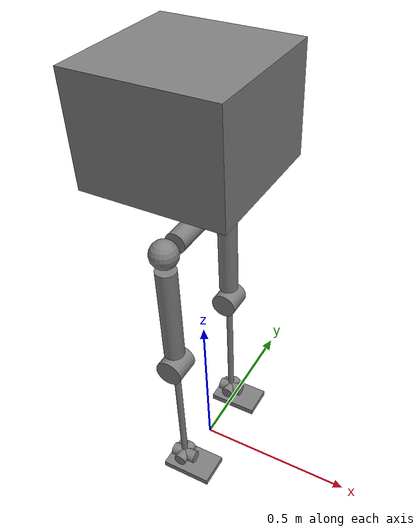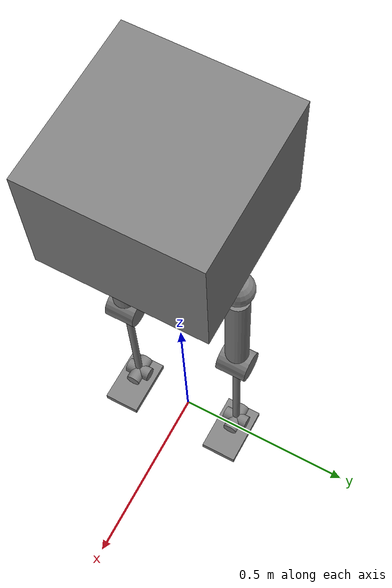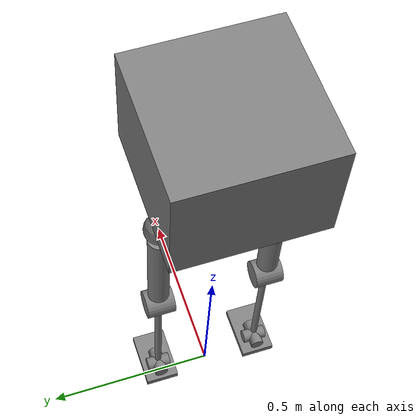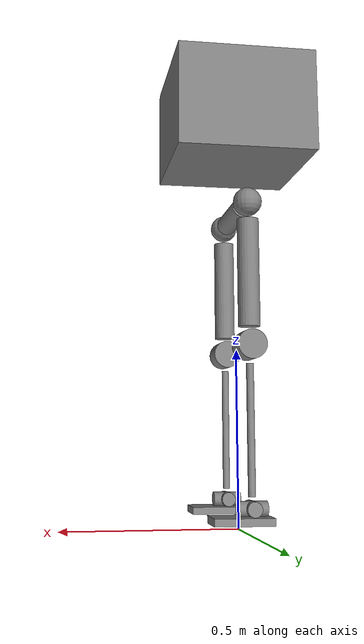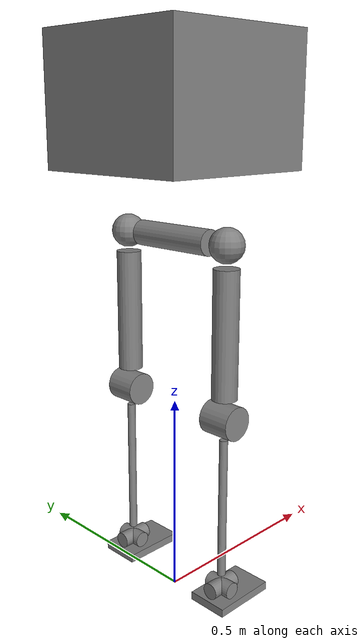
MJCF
<mujoco model="biped_robot">
    <compiler angle="degree" coordinate="local"/>

    <default>
        <joint limited="true" armature="0.01" damping="0.5"/>
        <default class="hip_x"> <!-- side-to-side -->
            <joint axis="1 0 0" range="-20 20"/>
        </default>
        <default class="hip_z"> <!-- twist -->
            <joint axis="0 0 1" range="-30 30"/>
        </default>
        <default class="hip_y"> <!-- forward/backward -->
            <joint axis="0 1 0" range="-60 60"/>
        </default>
        <default class="hip">
            <geom type="sphere" size=".04"/>
        </default>
        <default class="thigh">
            <geom type="cylinder" size=".03"/>
        </default>
        <default class="knee">
            <joint axis="0 1 0" range="0 100"/>
            <geom type="cylinder" size=".04"/>
            <site size=".041" rgba="1 0 0 0"/>
        </default>
        <default class="lower_leg">
            <geom type="cylinder" size=".01"/>
        </default>
        <default class="ankle_x">
            <joint axis="1 0 0" range="-20 20"/>
        </default>
        <default class="ankle_y">
            <joint axis="0 1 0" range="-50 30"/>
        </default>
        <default class="ankle">
            <geom type="cylinder" size=".02"/>
        </default>
        <default class="foot">
            <geom type="box" size=".08 .05 .01"/>
            <site type="box" size=".08 .05 .01" rgba="1 0 0 0"/>
        </default>
        <default class="motor">
            <motor ctrlrange="-1 1" ctrllimited="true"/>
        </default>
    </default>

    <worldbody>
        <body name="torso" pos="0 0 1.2">
            <camera name="track" pos="0 -5 0.3" xyaxes="1 0 0 0 0 1" mode="trackcom"/>
            <camera name="depth_camera" pos="0.7 0 0.5" xyaxes="0 -1 0 0.5 0 0.866" fovy="60"/>

            <freejoint name="root"/>
            <geom name="torso_geom" type="box" size=".2 .2 .15"/>
            <body name="pelvis" pos="0 0 -.3">
                <geom name="pelvis_geom" type="cylinder" fromto="0 -.11 0 0 .11 0" size=".03"/>
                <body name="thigh_left" pos="0 .2 0 ">
                    <joint name="hip_x_left" class="hip_x"/>
                    <joint name="hip_z_left" class="hip_z"/>
                    <joint name="hip_y_left" class="hip_y"/>
                    <geom name="hip_left" pos="0 -.04 0" class="hip"/>
                    <geom name="thigh_left" fromto="0 -.04 -.05 0 -.04 -.35" class="thigh"/>
                    <body name="lower_leg_left" pos="0 0 -.4">
                        <joint name="knee_left" class="knee"/>
                        <geom name="knee_left_geom" fromto="0 0 0 0 -.08 0" class="knee"/>
                        <site name="knee_left_site" class="knee"/>
                        <geom name="lower_leg_left" fromto="0 -.04 -.05 0 -.04 -.4" class="lower_leg"/>
                        <body name="foot_left" pos="0 0 -.41">
                            <joint name="ankle_x_left" class="ankle_x"/>
                            <joint name="ankle_y_left" class="ankle_y"/>
                            <geom name="ankle1_left" fromto="-.04 -.04 -.02 .04 -.04 -.02" class="ankle"/>
                            <geom name="ankle2_left" fromto="0 -.005 -.02 0 -.075 -.02" class="ankle"/>
                            <geom name="foot_left_geom" pos=".03 -.04 -.05" class="foot"/>
                            <site name="foot_left_site" pos=".03 -.04 -.05" class="foot"/>
                        </body>
                    </body>
                </body>

                <body name="thigh_right" pos="0 -.2 0">
                    <joint name="hip_x_right" class="hip_x"/>
                    <joint name="hip_z_right" class="hip_z"/>
                    <joint name="hip_y_right" class="hip_y"/>
                    <geom name="hip_right" pos="0 .04 0" class="hip"/>
                    <geom name="thigh_right" fromto="0 .04 -.05 0 .04 -.35" class="thigh"/>
                    <body name="lower_leg_right" pos="0 0 -.4">
                        <joint name="knee_right" class="knee"/>
                        <geom name="knee_right_geom" fromto="0 0 0 0 .08 0" class="knee"/>
                        <site name="knee_right_site" class="knee"/>
                        <geom name="lower_leg_right" fromto="0 .04 -.05 0 .04 -.4" class="lower_leg"/>
                        <body name="foot_right" pos="0 0 -.41">
                            <joint name="ankle_x_right" class="ankle_x"/>
                            <joint name="ankle_y_right" class="ankle_y"/>
                            <geom name="ankle1_right" fromto="-.04 .04 -.02 .04 .04 -.02" class="ankle"/>
                            <geom name="ankle2_right" fromto="0 .005 -.02 0 .075 -.02" class="ankle"/>
                            <geom name="foot_right_geom" pos=".03 .04 -.05" class="foot"/>
                            <site name="foot_right_site" pos=".03 .04 -.05" class="foot"/>
                        </body>
                    </body>
                </body>
            </body>
        </body>
    </worldbody>

    <actuator>
        <motor name="hip_x_left" joint="hip_x_left" gear="40" class="motor"/>
        <motor name="hip_z_left" joint="hip_z_left" gear="40" class="motor"/>
        <motor name="hip_y_left" joint="hip_y_left" gear="120" class="motor"/>
        <motor name="knee_left"  joint="knee_left"  gear="80" class="motor"/>
        <motor name="ankle_x_left" joint="ankle_x_left" gear="20" class="motor"/>
        <motor name="ankle_y_left" joint="ankle_y_left" gear="20" class="motor"/>

        <motor name="hip_x_right" joint="hip_x_right" gear="40" class="motor"/>
        <motor name="hip_z_right" joint="hip_z_right" gear="40" class="motor"/>
        <motor name="hip_y_right" joint="hip_y_right" gear="120" class="motor"/>
        <motor name="knee_right"  joint="knee_right"  gear="80" class="motor"/>
        <motor name="ankle_x_right" joint="ankle_x_right" gear="20" class="motor"/>
        <motor name="ankle_y_right" joint="ankle_y_right" gear="20" class="motor"/>
    </actuator>

    <sensor>
        <touch name="touch_knee_left" site="knee_left_site"/>
        <touch name="touch_knee_right" site="knee_right_site"/>
        <touch name="touch_left" site="foot_left_site"/>
        <touch name="touch_right" site="foot_right_site"/>
    </sensor>
</mujoco>
